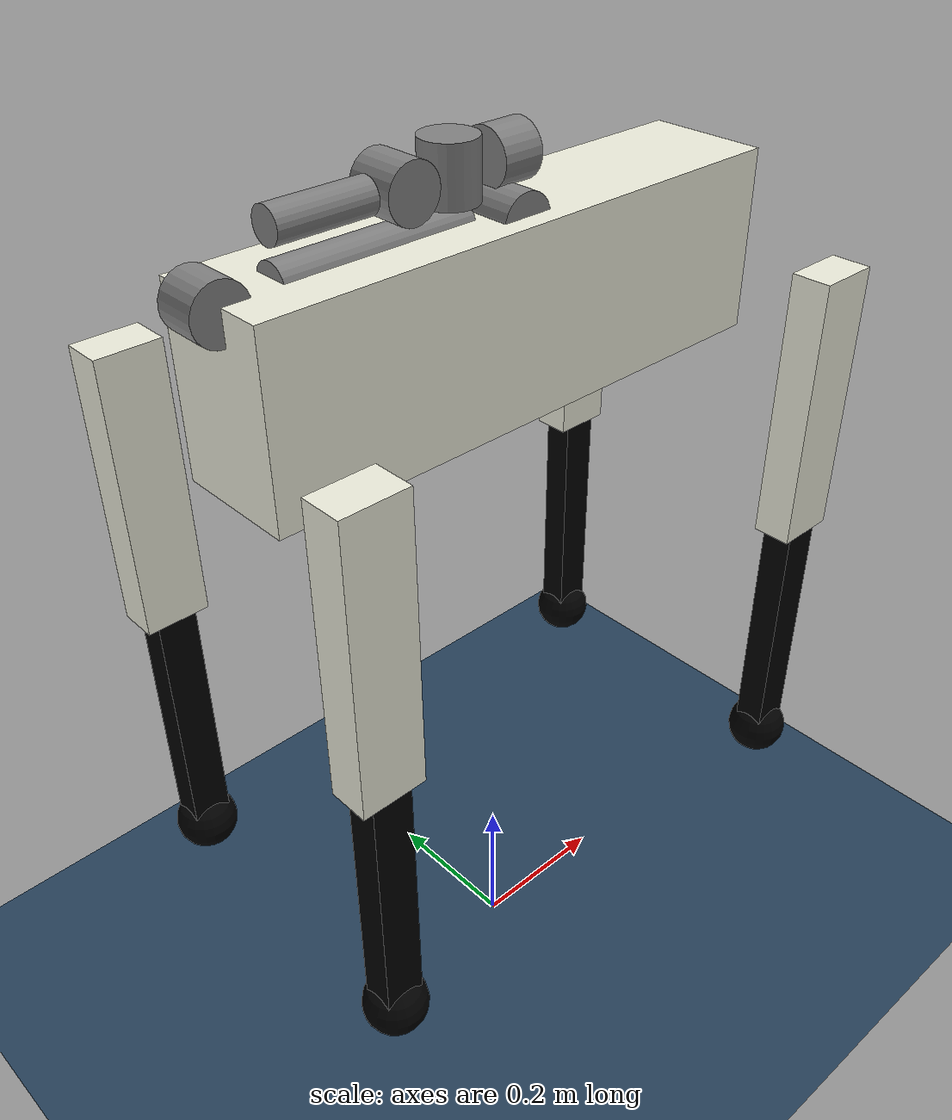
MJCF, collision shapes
<mujoco model="b1z1 scene">
  <include file="b1z1.xml"/>

  <statistic center="0 0 0.1" extent="0.8"/>

  <visual>
    <headlight diffuse="0.6 0.6 0.6" ambient="0.3 0.3 0.3" specular="0 0 0"/>
    <rgba haze="0.15 0.25 0.35 1"/>
    <global azimuth="-130" elevation="-20"/>
  </visual>

  <asset>
    <texture type="skybox" builtin="gradient" rgb1="0.3 0.5 0.7" rgb2="0 0 0" width="512" height="3072"/>
    <texture type="2d" name="groundplane" builtin="checker" mark="edge" rgb1="0.2 0.3 0.4" rgb2="0.1 0.2 0.3"
      markrgb="0.8 0.8 0.8" width="300" height="300"/>
    <material name="groundplane" texture="groundplane" texuniform="true" texrepeat="5 5" reflectance="0.2"/>
  </asset>

  <worldbody>
    <light pos="0 0 1.5" dir="0 0 -1" directional="true"/>
    <geom name="floor" size="0 0 0.05" type="plane" material="groundplane"/>
  </worldbody>
</mujoco>

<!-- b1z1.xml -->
<mujoco model="b1z1_description">
  <compiler angle="radian" meshdir="../meshes/"/>
  <asset>
    <mesh name="trunk" file="trunk.stl"/>
    <mesh name="hip" file="hip.stl"/>
    <mesh name="thigh_mirror" file="thigh_mirror.stl"/>
    <mesh name="calf" file="calf.stl"/>
    <mesh name="thigh" file="thigh.stl"/>
    <mesh name="z1_Link00" file="z1_Link00.stl"/>
    <mesh name="z1_Link01" file="z1_Link01.stl"/>
    <mesh name="z1_Link02" file="z1_Link02.stl"/>
    <mesh name="z1_Link03" file="z1_Link03.stl"/>
    <mesh name="z1_Link04" file="z1_Link04.stl"/>
    <mesh name="z1_Link05" file="z1_Link05.stl"/>
    <mesh name="z1_Link06" file="z1_Link06.stl"/>
  </asset>
  <worldbody>
    <body name="base" pos="0 0 1.0">
      <joint name="floating_base" type="free"/>
      <geom size="0.0005 0.0005 0.0005" type="box" contype="0" conaffinity="0" group="1" density="0"/>
      <geom type="mesh" contype="0" conaffinity="0" group="1" density="0" rgba="0.913725 0.913725 0.847059 1" mesh="trunk"/>
      <geom size="0.35 0.075 0.11" type="box" rgba="0.913725 0.913725 0.847059 0"/>
      <geom size="0.0005 0.0005 0.0005" type="box" contype="0" conaffinity="0" group="1" density="0" rgba="0.8 0 0 0"/>
      <geom size="0.05 0.01" pos="0.1955 -0.072 0" quat="0.707107 0 0.707107 0" type="cylinder" contype="0" conaffinity="0" group="1" density="0" rgba="0 0 0 0"/>
      <geom size="0.05 0.01" pos="0.1955 0.072 0" quat="0.707107 0 0.707107 0" type="cylinder" contype="0" conaffinity="0" group="1" density="0" rgba="0 0 0 0"/>
      <geom size="0.05 0.01" pos="-0.1955 -0.072 0" quat="0.707107 0 0.707107 0" type="cylinder" contype="0" conaffinity="0" group="1" density="0" rgba="0 0 0 0"/>
      <geom size="0.05 0.01" pos="-0.1955 0.072 0" quat="0.707107 0 0.707107 0" type="cylinder" contype="0" conaffinity="0" group="1" density="0" rgba="0 0 0 0"/>
      <geom type="mesh" contype="0" conaffinity="0" group="1" density="0" mesh="z1_Link00"/>
      <geom size="0.0325 0.0255" pos="0 0 0.0255" type="cylinder"/>
      <body name="FR_hip" pos="0.3455 -0.072 0">
        <inertial pos="-0.018016 -0.00971213 9.67456e-05" quat="0.514022 0.512801 0.485949 0.486488" mass="2.366" diaginertia="0.00980696 0.00664332 0.0045362"/>
        <joint name="FR_hip_joint" pos="0 0 0" axis="1 0 0" range="-0.75 0.75"/>
        <geom quat="0 1 0 0" type="mesh" contype="0" conaffinity="0" group="1" density="0" rgba="0.913725 0.913725 0.847059 1" mesh="hip"/>
        <geom size="0.05 0.01" pos="0 -0.00935 0" quat="0.707107 0.707107 0 0" type="cylinder" contype="0" conaffinity="0" group="1" density="0" rgba="0 0 0 0"/>
        <body name="FR_thigh" pos="0 -0.12675 0">
          <inertial pos="-0.000220117 0.0301731 -0.0507383" quat="0.736596 -0.0378368 0.076521 0.670924" mass="4.2" diaginertia="0.0487177 0.0459334 0.00814802"/>
          <joint name="FR_thigh_joint" pos="0 0 0" axis="0 1 0" range="-1 3.5"/>
          <geom type="mesh" contype="0" conaffinity="0" group="1" density="0" rgba="0.913725 0.913725 0.847059 1" mesh="thigh_mirror"/>
          <geom size="0.175 0.025 0.04" pos="0 0 -0.175" quat="0.707107 0 0.707107 0" type="box" rgba="0.913725 0.913725 0.847059 0"/>
          <geom size="0.05 0.01" pos="0 0.0519 0" quat="0.707107 0.707107 0 0" type="cylinder" contype="0" conaffinity="0" group="1" density="0" rgba="0 0 0 0"/>
          <body name="FR_calf" pos="0 0 -0.35">
            <inertial pos="0.0049483 0 -0.210919" quat="0.707231 -0.00481122 -0.00483372 0.70695" mass="0.907" diaginertia="0.0162164 0.0160695 0.000406131"/>
            <joint name="FR_calf_joint" pos="0 0 0" axis="0 1 0" range="-2.6 -0.6"/>
            <geom type="mesh" contype="0" conaffinity="0" group="1" density="0" rgba="0 0 0 1" mesh="calf"/>
            <geom size="0.175 0.02 0.025" pos="0 0 -0.175" quat="0.707107 0 0.707107 0" type="box" rgba="0 0 0 0"/>
            <geom size="0.03" pos="0 0 -0.35" contype="0" conaffinity="0" group="1" density="0" rgba="0 0 0 1"/>
            <geom size="0.04" pos="0 0 -0.35" rgba="0 0 0 1"/>
          </body>
        </body>
      </body>
      <body name="FL_hip" pos="0.3455 0.072 0">
        <inertial pos="-0.018016 0.00971213 9.67456e-05" quat="0.486488 0.485949 0.512801 0.514022" mass="2.366" diaginertia="0.00980696 0.00664332 0.0045362"/>
        <joint name="FL_hip_joint" pos="0 0 0" axis="1 0 0" range="-0.75 0.75"/>
        <geom type="mesh" contype="0" conaffinity="0" group="1" density="0" rgba="0.913725 0.913725 0.847059 1" mesh="hip"/>
        <geom size="0.05 0.01" pos="0 0.00935 0" quat="0.707107 0.707107 0 0" type="cylinder" contype="0" conaffinity="0" group="1" density="0" rgba="0 0 0 0"/>
        <body name="FL_thigh" pos="0 0.12675 0">
          <inertial pos="-0.000220117 -0.0301731 -0.0507383" quat="0.670924 0.076521 -0.0378368 0.736596" mass="4.2" diaginertia="0.0487177 0.0459334 0.00814802"/>
          <joint name="FL_thigh_joint" pos="0 0 0" axis="0 1 0" range="-1 3.5"/>
          <geom type="mesh" contype="0" conaffinity="0" group="1" density="0" rgba="0.913725 0.913725 0.847059 1" mesh="thigh"/>
          <geom size="0.175 0.025 0.04" pos="0 0 -0.175" quat="0.707107 0 0.707107 0" type="box" rgba="0.913725 0.913725 0.847059 0"/>
          <geom size="0.05 0.01" pos="0 -0.0519 0" quat="0.707107 0.707107 0 0" type="cylinder" contype="0" conaffinity="0" group="1" density="0" rgba="0 0 0 0"/>
          <body name="FL_calf" pos="0 0 -0.35">
            <inertial pos="0.0049483 0 -0.210919" quat="0.707231 -0.00481122 -0.00483372 0.70695" mass="0.907" diaginertia="0.0162164 0.0160695 0.000406131"/>
            <joint name="FL_calf_joint" pos="0 0 0" axis="0 1 0" range="-2.6 -0.6"/>
            <geom type="mesh" contype="0" conaffinity="0" group="1" density="0" rgba="0 0 0 1" mesh="calf"/>
            <geom size="0.175 0.02 0.025" pos="0 0 -0.175" quat="0.707107 0 0.707107 0" type="box" rgba="0 0 0 0"/>
            <geom size="0.03" pos="0 0 -0.35" contype="0" conaffinity="0" group="1" density="0" rgba="0 0 0 1"/>
            <geom size="0.04" pos="0 0 -0.35" rgba="0 0 0 1"/>
          </body>
        </body>
      </body>
      <body name="RR_hip" pos="-0.3455 -0.072 0">
        <inertial pos="0.018016 -0.00971213 9.67456e-05" quat="0.485949 0.486488 0.514022 0.512801" mass="2.366" diaginertia="0.00980696 0.00664332 0.0045362"/>
        <joint name="RR_hip_joint" pos="0 0 0" axis="1 0 0" range="-0.75 0.75"/>
        <geom quat="0 0 0 -1" type="mesh" contype="0" conaffinity="0" group="1" density="0" rgba="0.913725 0.913725 0.847059 1" mesh="hip"/>
        <geom size="0.05 0.01" pos="0 -0.00935 0" quat="0.707107 0.707107 0 0" type="cylinder" contype="0" conaffinity="0" group="1" density="0" rgba="0 0 0 0"/>
        <body name="RR_thigh" pos="0 -0.12675 0">
          <inertial pos="-0.000220117 0.0301731 -0.0507383" quat="0.736596 -0.0378368 0.076521 0.670924" mass="4.2" diaginertia="0.0487177 0.0459334 0.00814802"/>
          <joint name="RR_thigh_joint" pos="0 0 0" axis="0 1 0" range="-1 3.5"/>
          <geom type="mesh" contype="0" conaffinity="0" group="1" density="0" rgba="0.913725 0.913725 0.847059 1" mesh="thigh_mirror"/>
          <geom size="0.175 0.025 0.04" pos="0 0 -0.175" quat="0.707107 0 0.707107 0" type="box" rgba="0.913725 0.913725 0.847059 0"/>
          <geom size="0.05 0.01" pos="0 0.0519 0" quat="0.707107 0.707107 0 0" type="cylinder" contype="0" conaffinity="0" group="1" density="0" rgba="0 0 0 0"/>
          <body name="RR_calf" pos="0 0 -0.35">
            <inertial pos="0.0049483 0 -0.210919" quat="0.707231 -0.00481122 -0.00483372 0.70695" mass="0.907" diaginertia="0.0162164 0.0160695 0.000406131"/>
            <joint name="RR_calf_joint" pos="0 0 0" axis="0 1 0" range="-2.6 -0.6"/>
            <geom type="mesh" contype="0" conaffinity="0" group="1" density="0" rgba="0 0 0 1" mesh="calf"/>
            <geom size="0.175 0.02 0.025" pos="0 0 -0.175" quat="0.707107 0 0.707107 0" type="box" rgba="0 0 0 0"/>
            <geom size="0.03" pos="0 0 -0.35" contype="0" conaffinity="0" group="1" density="0" rgba="0 0 0 1"/>
            <geom size="0.04" pos="0 0 -0.35" rgba="0 0 0 1"/>
          </body>
        </body>
      </body>
      <body name="RL_hip" pos="-0.3455 0.072 0">
        <inertial pos="0.018016 0.00971213 9.67456e-05" quat="0.512801 0.514022 0.486488 0.485949" mass="2.366" diaginertia="0.00980696 0.00664332 0.0045362"/>
        <joint name="RL_hip_joint" pos="0 0 0" axis="1 0 0" range="-0.75 0.75"/>
        <geom quat="0 0 1 0" type="mesh" contype="0" conaffinity="0" group="1" density="0" rgba="0.913725 0.913725 0.847059 1" mesh="hip"/>
        <geom size="0.05 0.01" pos="0 0.00935 0" quat="0.707107 0.707107 0 0" type="cylinder" contype="0" conaffinity="0" group="1" density="0" rgba="0 0 0 0"/>
        <body name="RL_thigh" pos="0 0.12675 0">
          <inertial pos="-0.000220117 -0.0301731 -0.0507383" quat="0.670924 0.076521 -0.0378368 0.736596" mass="4.2" diaginertia="0.0487177 0.0459334 0.00814802"/>
          <joint name="RL_thigh_joint" pos="0 0 0" axis="0 1 0" range="-1 3.5"/>
          <geom type="mesh" contype="0" conaffinity="0" group="1" density="0" rgba="0.913725 0.913725 0.847059 1" mesh="thigh"/>
          <geom size="0.175 0.025 0.04" pos="0 0 -0.175" quat="0.707107 0 0.707107 0" type="box" rgba="0.913725 0.913725 0.847059 0"/>
          <geom size="0.05 0.01" pos="0 -0.0519 0" quat="0.707107 0.707107 0 0" type="cylinder" contype="0" conaffinity="0" group="1" density="0" rgba="0 0 0 0"/>
          <body name="RL_calf" pos="0 0 -0.35">
            <inertial pos="0.0049483 0 -0.210919" quat="0.707231 -0.00481122 -0.00483372 0.70695" mass="0.907" diaginertia="0.0162164 0.0160695 0.000406131"/>
            <joint name="RL_calf_joint" pos="0 0 0" axis="0 1 0" range="-2.6 -0.6"/>
            <geom type="mesh" contype="0" conaffinity="0" group="1" density="0" rgba="0 0 0 1" mesh="calf"/>
            <geom size="0.175 0.02 0.025" pos="0 0 -0.175" quat="0.707107 0 0.707107 0" type="box" rgba="0 0 0 0"/>
            <geom size="0.03" pos="0 0 -0.35" contype="0" conaffinity="0" group="1" density="0" rgba="0 0 0 1"/>
            <geom size="0.04" pos="0 0 -0.35" rgba="0 0 0 1"/>
          </body>
        </body>
      </body>
      <body name="link01" pos="0 0 0.0585">
        <inertial pos="2.47e-06 -0.00025198 0.0231717" quat="0.708578 0.705633 0.000281462 -0.000355927" mass="0.673326" diaginertia="0.00128328 0.000839362 0.000719308"/>
        <joint name="joint1" pos="0 0 0" axis="0 0 1" range="-2.61799 2.61799" damping="1" frictionloss="1"/>
        <geom type="mesh" contype="0" conaffinity="0" group="1" density="0" mesh="z1_Link01"/>
        <body name="link02" pos="0 0 0.045">
          <inertial pos="-0.110126 0.00240029 0.00158266" quat="0.00748058 0.707092 -0.0114473 0.70699" mass="1.19132" diaginertia="0.0246612 0.0243113 0.00100468"/>
          <joint name="joint2" pos="0 0 0" axis="0 1 0" range="0 2.96706" damping="2" frictionloss="2"/>
          <geom type="mesh" contype="0" conaffinity="0" group="1" density="0" mesh="z1_Link02"/>
          <geom size="0.0325 0.051" quat="0.707107 0.707107 0 0" type="cylinder"/>
          <geom size="0.0225 0.1175" pos="-0.1625 0 0" quat="0.707107 0 0.707107 0" type="cylinder"/>
          <geom size="0.0325 0.0255" pos="-0.35 0 0" quat="0.707107 0.707107 0 0" type="cylinder"/>
          <body name="link03" pos="-0.35 0 0">
            <inertial pos="0.106092 -0.00541815 0.0347638" quat="0.540557 0.443575 0.426319 0.573839" mass="0.839409" diaginertia="0.00954365 0.00938711 0.000558432"/>
            <joint name="joint3" pos="0 0 0" axis="0 1 0" range="-2.87979 0" damping="1" frictionloss="1"/>
            <geom type="mesh" contype="0" conaffinity="0" group="1" density="0" mesh="z1_Link03"/>
            <geom size="0.02 0.058" pos="0.128 0 0.055" quat="0.707107 0 0.707107 0" type="cylinder"/>
            <geom size="0.0325 0.0295" pos="0.2205 0 0.055" quat="0.5 -0.5 0.5 0.5" type="cylinder"/>
            <body name="link04" pos="0.218 0 0.057">
              <inertial pos="0.0436668 0.00364738 -0.00170192" quat="0.0390835 0.726445 -0.0526787 0.684087" mass="0.564046" diaginertia="0.000981656 0.00094053 0.000302655"/>
              <joint name="joint4" pos="0 0 0" axis="0 1 0" range="-1.51844 1.51844" damping="1" frictionloss="1"/>
              <geom type="mesh" contype="0" conaffinity="0" group="1" density="0" mesh="z1_Link04"/>
              <geom size="0.0325 0.0335" pos="0.072 0 0" type="cylinder"/>
              <body name="link05" pos="0.07 0 0">
                <inertial pos="0.0312153 0 0.00646316" quat="0.462205 0.535209 0.53785 0.45895" mass="0.389385" diaginertia="0.000558961 0.000547317 0.000167332"/>
                <joint name="joint5" pos="0 0 0" axis="0 0 1" range="-1.3439 1.3439" damping="1" frictionloss="1"/>
                <geom type="mesh" contype="0" conaffinity="0" group="1" density="0" mesh="z1_Link05"/>
                <body name="link06" pos="0.0492 0 0">
                  <inertial pos="0.0241569 -0.00017355 -0.00143876" quat="0.998779 0.0457735 -0.00663717 0.0173548" mass="0.288758" diaginertia="0.00018333 0.000147464 0.000146786"/>
                  <joint name="joint6" pos="0 0 0" axis="1 0 0" range="-2.79253 2.79253" damping="1" frictionloss="1"/>
                  <geom type="mesh" contype="0" conaffinity="0" group="1" density="0" mesh="z1_Link06"/>
                  <geom size="0.0325 0.0255" pos="0.0255 0 0" quat="0.707107 0 0.707107 0" type="cylinder"/>
                </body>
              </body>
            </body>
          </body>
        </body>
      </body>
    </body>
  </worldbody>
</mujoco>
